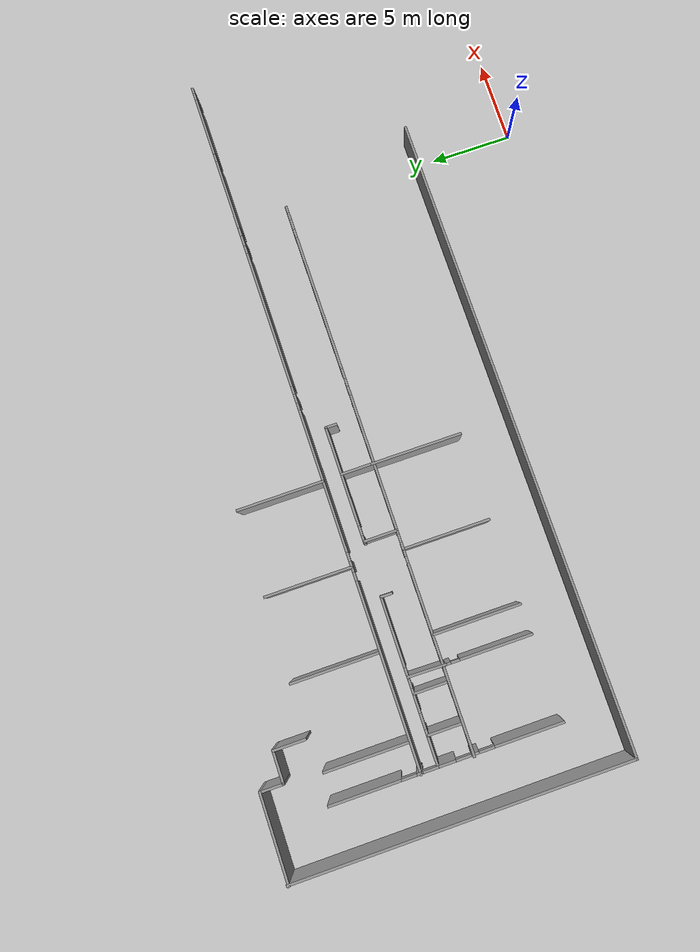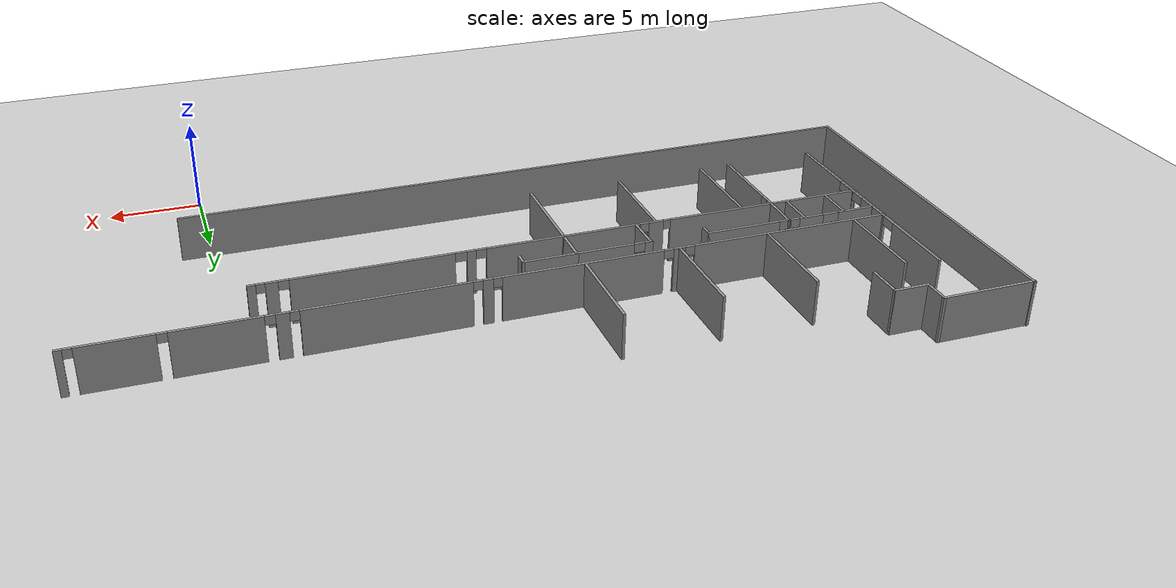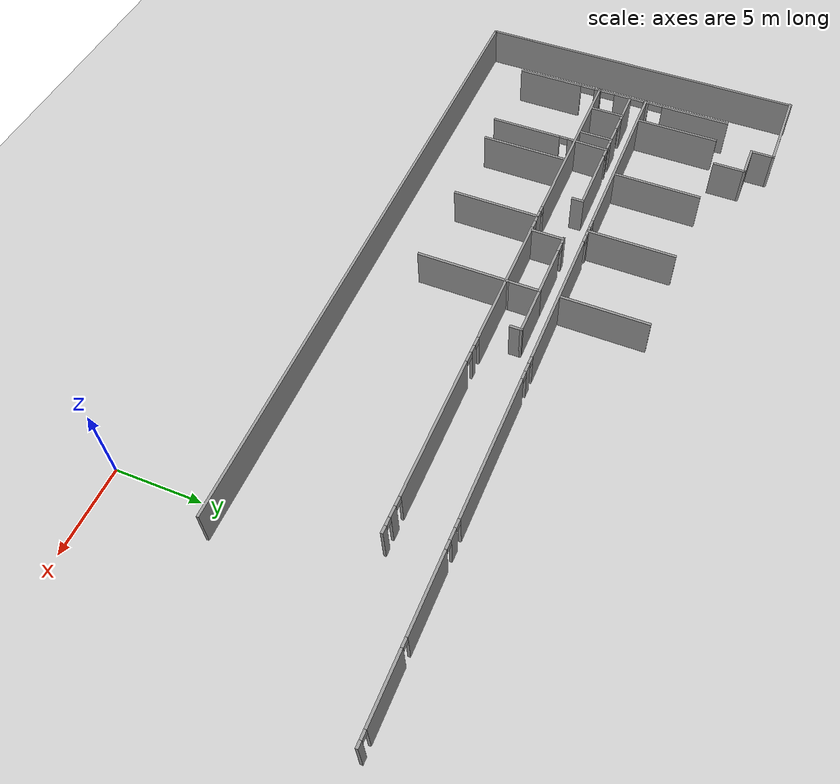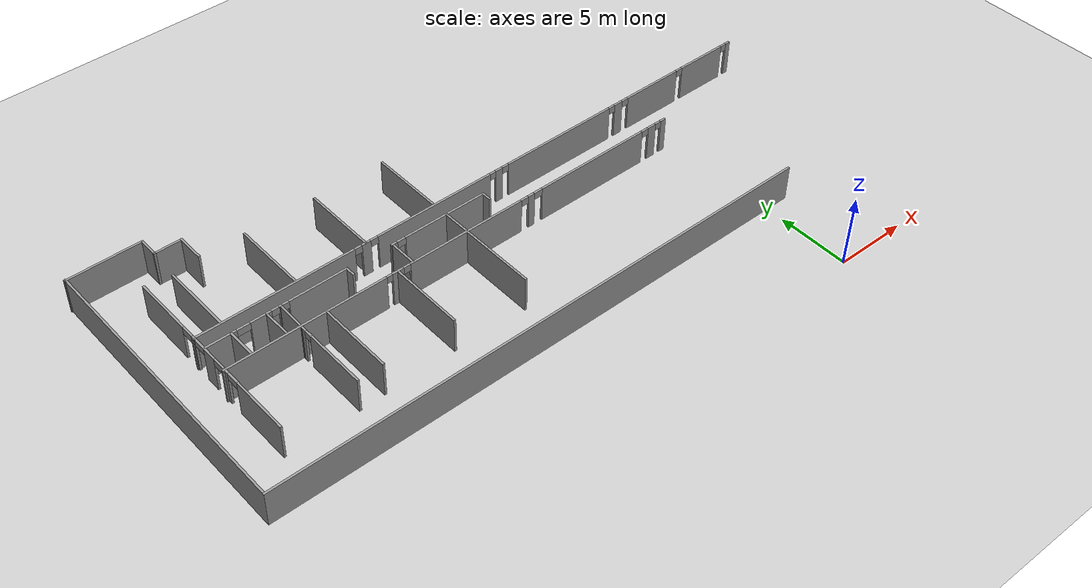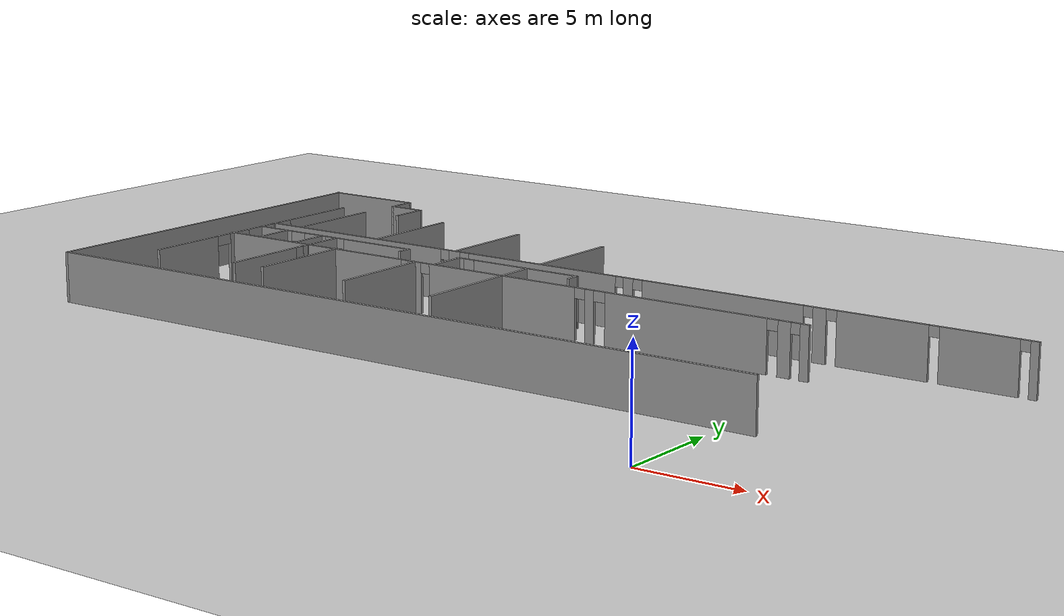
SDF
<sdf version="1.6">
 <world name="default">
  <model name="ground_plane">
   <static>1</static>
   <link name="link">
    <collision name="collision">
     <geometry><plane><normal>0 0 1</normal><size>100 100</size></plane></geometry>
     <surface><friction><ode><mu>100</mu><mu2>50</mu2></ode></friction></surface>
    </collision>
    <visual name="visual">
     <cast_shadows>0</cast_shadows>
     <geometry><plane><normal>0 0 1</normal><size>100 100</size></plane></geometry>
     <material>
      <script><uri>file://media/materials/scripts/gazebo.material</uri><name>Gazebo/Grey</name></script>
     </material>
    </visual>
   </link>
  </model>
  <model name="se1floor1">
   <pose>-5.19256 -0.852459 0 0 -0 0</pose>
   <link name="Wall_0">
    <collision name="Wall_0_Collision">
     <geometry><box><size>20.25 0.15 2.5</size></box></geometry>
     <pose>0 0 1.25 0 -0 0</pose>
    </collision>
    <visual name="Wall_0_Visual">
     <pose>0 0 1.25 0 -0 0</pose>
     <geometry><box><size>20.25 0.15 2.5</size></box></geometry>
     <material>
      <script><uri>file://media/materials/scripts/gazebo.material</uri><name>Gazebo/Grey</name></script>
      <ambient>1 1 1 1</ambient>
     </material>
     <meta><layer>0</layer></meta>
    </visual>
    <pose>-32.1 17.225 0 0 0 -1.5708</pose>
   </link>
   <link name="Wall_1">
    <collision name="Wall_1_Collision">
     <geometry><box><size>39 0.15 2.5</size></box></geometry>
     <pose>0 0 1.25 0 -0 0</pose>
    </collision>
    <visual name="Wall_1_Visual">
     <pose>0 0 1.25 0 -0 0</pose>
     <geometry><box><size>39 0.15 2.5</size></box></geometry>
     <material>
      <script><uri>file://media/materials/scripts/gazebo.material</uri><name>Gazebo/Grey</name></script>
      <ambient>1 1 1 1</ambient>
     </material>
     <meta><layer>0</layer></meta>
    </visual>
    <pose>-12.675 7.175 0 0 -0 0</pose>
   </link>
   <link name="Wall_13">
    <collision name="Wall_13_Collision">
     <geometry><box><size>2 0.15 2.5</size></box></geometry>
     <pose>0 0 1.25 0 -0 0</pose>
    </collision>
    <visual name="Wall_13_Visual">
     <pose>0 0 1.25 0 -0 0</pose>
     <geometry><box><size>2 0.15 2.5</size></box></geometry>
     <material>
      <script><uri>file://media/materials/scripts/gazebo.material</uri><name>Gazebo/Grey</name></script>
      <ambient>1 1 1 1</ambient>
     </material>
     <meta><layer>0</layer></meta>
    </visual>
    <pose>-25.2 24.95 0 0 -0 1.5708</pose>
   </link>
   <link name="Wall_15">
    <collision name="Wall_15_Collision">
     <geometry><box><size>2 0.15 2.5</size></box></geometry>
     <pose>0 0 1.25 0 -0 0</pose>
    </collision>
    <visual name="Wall_15_Visual">
     <pose>0 0 1.25 0 -0 0</pose>
     <geometry><box><size>2 0.15 2.5</size></box></geometry>
     <material>
      <script><uri>file://media/materials/scripts/gazebo.material</uri><name>Gazebo/Grey</name></script>
      <ambient>1 1 1 1</ambient>
     </material>
     <meta><layer>0</layer></meta>
    </visual>
    <pose>-26.125 25.875 0 0 -0 3.14159</pose>
   </link>
   <link name="Wall_16">
    <collision name="Wall_16_Collision">
     <geometry><box><size>1.5 0.15 2.5</size></box></geometry>
     <pose>0 0 1.25 0 -0 0</pose>
    </collision>
    <visual name="Wall_16_Visual">
     <pose>0 0 1.25 0 -0 0</pose>
     <geometry><box><size>1.5 0.15 2.5</size></box></geometry>
     <material>
      <script><uri>file://media/materials/scripts/gazebo.material</uri><name>Gazebo/Grey</name></script>
      <ambient>1 1 1 1</ambient>
     </material>
     <meta><layer>0</layer></meta>
    </visual>
    <pose>-27.05 26.55 0 0 -0 1.5708</pose>
   </link>
   <link name="Wall_17">
    <collision name="Wall_17_Collision">
     <geometry><box><size>5.25 0.15 2.5</size></box></geometry>
     <pose>0 0 1.25 0 -0 0</pose>
    </collision>
    <visual name="Wall_17_Visual">
     <pose>0 0 1.25 0 -0 0</pose>
     <geometry><box><size>5.25 0.15 2.5</size></box></geometry>
     <material>
      <script><uri>file://media/materials/scripts/gazebo.material</uri><name>Gazebo/Grey</name></script>
      <ambient>1 1 1 1</ambient>
     </material>
     <meta><layer>0</layer></meta>
    </visual>
    <pose>-29.6 27.225 0 0 -0 3.14159</pose>
   </link>
   <link name="Wall_19">
    <pose>-28.9578 17.0953 0 0 0 -1.5708</pose>
    <visual name="Wall_19_Visual_0">
     <pose>-4.75272 0 1.25 0 -0 0</pose>
     <geometry><box><size>4.24456 0.15 2.5</size></box></geometry>
     <material>
      <script><uri>file://media/materials/scripts/gazebo.material</uri><name>Gazebo/Grey</name></script>
      <ambient>1 1 1 1</ambient>
     </material>
     <meta><layer>0</layer></meta>
    </visual>
    <collision name="Wall_19_Collision_0">
     <geometry><box><size>4.24456 0.15 2.5</size></box></geometry>
     <pose>-4.75272 0 1.25 0 -0 0</pose>
    </collision>
    <visual name="Wall_19_Visual_1">
     <pose>-1.55236 0 1.25 0 -0 0</pose>
     <geometry><box><size>0.356145 0.15 2.5</size></box></geometry>
     <material>
      <script><uri>file://media/materials/scripts/gazebo.material</uri><name>Gazebo/Grey</name></script>
      <ambient>1 1 1 1</ambient>
     </material>
     <meta><layer>0</layer></meta>
    </visual>
    <collision name="Wall_19_Collision_1">
     <geometry><box><size>0.356145 0.15 2.5</size></box></geometry>
     <pose>-1.55236 0 1.25 0 -0 0</pose>
    </collision>
    <visual name="Wall_19_Visual_2">
     <pose>0.02945 0 1.25 0 -0 0</pose>
     <geometry><box><size>1.00748 0.15 2.5</size></box></geometry>
     <material>
      <script><uri>file://media/materials/scripts/gazebo.material</uri><name>Gazebo/Grey</name></script>
      <ambient>1 1 1 1</ambient>
     </material>
     <meta><layer>0</layer></meta>
    </visual>
    <collision name="Wall_19_Collision_2">
     <geometry><box><size>1.00748 0.15 2.5</size></box></geometry>
     <pose>0.02945 0 1.25 0 -0 0</pose>
    </collision>
    <visual name="Wall_19_Visual_3">
     <pose>1.65779 0 1.25 0 -0 0</pose>
     <geometry><box><size>0.449194 0.15 2.5</size></box></geometry>
     <material>
      <script><uri>file://media/materials/scripts/gazebo.material</uri><name>Gazebo/Grey</name></script>
      <ambient>1 1 1 1</ambient>
     </material>
     <meta><layer>0</layer></meta>
    </visual>
    <collision name="Wall_19_Collision_3">
     <geometry><box><size>0.449194 0.15 2.5</size></box></geometry>
     <pose>1.65779 0 1.25 0 -0 0</pose>
    </collision>
    <visual name="Wall_19_Visual_4">
     <pose>4.82869 0 1.25 0 -0 0</pose>
     <geometry><box><size>4.09262 0.15 2.5</size></box></geometry>
     <material>
      <script><uri>file://media/materials/scripts/gazebo.material</uri><name>Gazebo/Grey</name></script>
      <ambient>1 1 1 1</ambient>
     </material>
     <meta><layer>0</layer></meta>
    </visual>
    <collision name="Wall_19_Collision_4">
     <geometry><box><size>4.09262 0.15 2.5</size></box></geometry>
     <pose>4.82869 0 1.25 0 -0 0</pose>
    </collision>
    <visual name="Wall_19_Visual_5">
     <pose>-2.18044 0 2.25 0 -0 0</pose>
     <geometry><box><size>0.9 0.15 0.5</size></box></geometry>
     <material>
      <script><uri>file://media/materials/scripts/gazebo.material</uri><name>Gazebo/Grey</name></script>
      <ambient>1 1 1 1</ambient>
     </material>
     <meta><layer>0</layer></meta>
    </visual>
    <collision name="Wall_19_Collision_5">
     <geometry><box><size>0.9 0.15 0.5</size></box></geometry>
     <pose>-2.18044 0 2.25 0 -0 0</pose>
    </collision>
    <visual name="Wall_19_Visual_6">
     <pose>-0.92429 0 2.25 0 -0 0</pose>
     <geometry><box><size>0.9 0.15 0.5</size></box></geometry>
     <material>
      <script><uri>file://media/materials/scripts/gazebo.material</uri><name>Gazebo/Grey</name></script>
      <ambient>1 1 1 1</ambient>
     </material>
     <meta><layer>0</layer></meta>
    </visual>
    <collision name="Wall_19_Collision_6">
     <geometry><box><size>0.9 0.15 0.5</size></box></geometry>
     <pose>-0.92429 0 2.25 0 -0 0</pose>
    </collision>
    <visual name="Wall_19_Visual_7">
     <pose>0.983191 0 2.25 0 -0 0</pose>
     <geometry><box><size>0.9 0.15 0.5</size></box></geometry>
     <material>
      <script><uri>file://media/materials/scripts/gazebo.material</uri><name>Gazebo/Grey</name></script>
      <ambient>1 1 1 1</ambient>
     </material>
     <meta><layer>0</layer></meta>
    </visual>
    <collision name="Wall_19_Collision_7">
     <geometry><box><size>0.9 0.15 0.5</size></box></geometry>
     <pose>0.983191 0 2.25 0 -0 0</pose>
    </collision>
    <visual name="Wall_19_Visual_8">
     <pose>2.33238 0 2.25 0 -0 0</pose>
     <geometry><box><size>0.9 0.15 0.5</size></box></geometry>
     <material>
      <script><uri>file://media/materials/scripts/gazebo.material</uri><name>Gazebo/Grey</name></script>
      <ambient>1 1 1 1</ambient>
     </material>
     <meta><layer>0</layer></meta>
    </visual>
    <collision name="Wall_19_Collision_8">
     <geometry><box><size>0.9 0.15 0.5</size></box></geometry>
     <pose>2.33238 0 2.25 0 -0 0</pose>
    </collision>
   </link>
   <link name="Wall_29">
    <pose>-12.3828 15.5453 0 0 -0 3.14159</pose>
    <visual name="Wall_29_Visual_0">
     <pose>-16.5318 0 1.25 0 -0 0</pose>
     <geometry><box><size>0.436443 0.15 2.5</size></box></geometry>
     <material>
      <script><uri>file://media/materials/scripts/gazebo.material</uri><name>Gazebo/Grey</name></script>
      <ambient>1 1 1 1</ambient>
     </material>
     <meta><layer>0</layer></meta>
    </visual>
    <collision name="Wall_29_Collision_0">
     <geometry><box><size>0.436443 0.15 2.5</size></box></geometry>
     <pose>-16.5318 0 1.25 0 -0 0</pose>
    </collision>
    <visual name="Wall_29_Visual_1">
     <pose>-15.5417 0 1.25 0 -0 0</pose>
     <geometry><box><size>0.628631 0.15 2.5</size></box></geometry>
     <material>
      <script><uri>file://media/materials/scripts/gazebo.material</uri><name>Gazebo/Grey</name></script>
      <ambient>1 1 1 1</ambient>
     </material>
     <meta><layer>0</layer></meta>
    </visual>
    <collision name="Wall_29_Collision_1">
     <geometry><box><size>0.628631 0.15 2.5</size></box></geometry>
     <pose>-15.5417 0 1.25 0 -0 0</pose>
    </collision>
    <visual name="Wall_29_Visual_2">
     <pose>-10.4781 0 1.25 0 -0 0</pose>
     <geometry><box><size>8.42264 0.15 2.5</size></box></geometry>
     <material>
      <script><uri>file://media/materials/scripts/gazebo.material</uri><name>Gazebo/Grey</name></script>
      <ambient>1 1 1 1</ambient>
     </material>
     <meta><layer>0</layer></meta>
    </visual>
    <collision name="Wall_29_Collision_2">
     <geometry><box><size>8.42264 0.15 2.5</size></box></geometry>
     <pose>-10.4781 0 1.25 0 -0 0</pose>
    </collision>
    <visual name="Wall_29_Visual_3">
     <pose>-5.40953 0 1.25 0 -0 0</pose>
     <geometry><box><size>0.477779 0.15 2.5</size></box></geometry>
     <material>
      <script><uri>file://media/materials/scripts/gazebo.material</uri><name>Gazebo/Grey</name></script>
      <ambient>1 1 1 1</ambient>
     </material>
     <meta><layer>0</layer></meta>
    </visual>
    <collision name="Wall_29_Collision_3">
     <geometry><box><size>0.477779 0.15 2.5</size></box></geometry>
     <pose>-5.40953 0 1.25 0 -0 0</pose>
    </collision>
    <visual name="Wall_29_Visual_4">
     <pose>-0.381135 0 1.25 0 -0 0</pose>
     <geometry><box><size>8.46287 0.15 2.5</size></box></geometry>
     <material>
      <script><uri>file://media/materials/scripts/gazebo.material</uri><name>Gazebo/Grey</name></script>
      <ambient>1 1 1 1</ambient>
     </material>
     <meta><layer>0</layer></meta>
    </visual>
    <collision name="Wall_29_Collision_4">
     <geometry><box><size>8.46287 0.15 2.5</size></box></geometry>
     <pose>-0.381135 0 1.25 0 -0 0</pose>
    </collision>
    <visual name="Wall_29_Visual_5">
     <pose>4.75788 0 1.25 0 -0 0</pose>
     <geometry><box><size>0.81971 0.15 2.5</size></box></geometry>
     <material>
      <script><uri>file://media/materials/scripts/gazebo.material</uri><name>Gazebo/Grey</name></script>
      <ambient>1 1 1 1</ambient>
     </material>
     <meta><layer>0</layer></meta>
    </visual>
    <collision name="Wall_29_Collision_5">
     <geometry><box><size>0.81971 0.15 2.5</size></box></geometry>
     <pose>4.75788 0 1.25 0 -0 0</pose>
    </collision>
    <visual name="Wall_29_Visual_6">
     <pose>11.1574 0 1.25 0 -0 0</pose>
     <geometry><box><size>11.1851 0.15 2.5</size></box></geometry>
     <material>
      <script><uri>file://media/materials/scripts/gazebo.material</uri><name>Gazebo/Grey</name></script>
      <ambient>1 1 1 1</ambient>
     </material>
     <meta><layer>0</layer></meta>
    </visual>
    <collision name="Wall_29_Collision_6">
     <geometry><box><size>11.1851 0.15 2.5</size></box></geometry>
     <pose>11.1574 0 1.25 0 -0 0</pose>
    </collision>
    <visual name="Wall_29_Visual_7">
     <pose>-16.0848 0 2.25 0 -0 0</pose>
     <geometry><box><size>0.457501 0.15 0.5</size></box></geometry>
     <material>
      <script><uri>file://media/materials/scripts/gazebo.material</uri><name>Gazebo/Grey</name></script>
      <ambient>1 1 1 1</ambient>
     </material>
     <meta><layer>0</layer></meta>
    </visual>
    <collision name="Wall_29_Collision_7">
     <geometry><box><size>0.457501 0.15 0.5</size></box></geometry>
     <pose>-16.0848 0 2.25 0 -0 0</pose>
    </collision>
    <visual name="Wall_29_Visual_8">
     <pose>-14.9584 0 2.25 0 -0 0</pose>
     <geometry><box><size>0.537956 0.15 0.5</size></box></geometry>
     <material>
      <script><uri>file://media/materials/scripts/gazebo.material</uri><name>Gazebo/Grey</name></script>
      <ambient>1 1 1 1</ambient>
     </material>
     <meta><layer>0</layer></meta>
    </visual>
    <collision name="Wall_29_Collision_8">
     <geometry><box><size>0.537956 0.15 0.5</size></box></geometry>
     <pose>-14.9584 0 2.25 0 -0 0</pose>
    </collision>
    <visual name="Wall_29_Visual_9">
     <pose>-5.95762 0 2.25 0 -0 0</pose>
     <geometry><box><size>0.61841 0.15 0.5</size></box></geometry>
     <material>
      <script><uri>file://media/materials/scripts/gazebo.material</uri><name>Gazebo/Grey</name></script>
      <ambient>1 1 1 1</ambient>
     </material>
     <meta><layer>0</layer></meta>
    </visual>
    <collision name="Wall_29_Collision_9">
     <geometry><box><size>0.61841 0.15 0.5</size></box></geometry>
     <pose>-5.95762 0 2.25 0 -0 0</pose>
    </collision>
    <visual name="Wall_29_Visual_10">
     <pose>-4.8916 0 2.25 0 -0 0</pose>
     <geometry><box><size>0.558069 0.15 0.5</size></box></geometry>
     <material>
      <script><uri>file://media/materials/scripts/gazebo.material</uri><name>Gazebo/Grey</name></script>
      <ambient>1 1 1 1</ambient>
     </material>
     <meta><layer>0</layer></meta>
    </visual>
    <collision name="Wall_29_Collision_10">
     <geometry><box><size>0.558069 0.15 0.5</size></box></geometry>
     <pose>-4.8916 0 2.25 0 -0 0</pose>
    </collision>
    <visual name="Wall_29_Visual_11">
     <pose>4.09916 0 2.25 0 -0 0</pose>
     <geometry><box><size>0.497729 0.15 0.5</size></box></geometry>
     <material>
      <script><uri>file://media/materials/scripts/gazebo.material</uri><name>Gazebo/Grey</name></script>
      <ambient>1 1 1 1</ambient>
     </material>
     <meta><layer>0</layer></meta>
    </visual>
    <collision name="Wall_29_Collision_11">
     <geometry><box><size>0.497729 0.15 0.5</size></box></geometry>
     <pose>4.09916 0 2.25 0 -0 0</pose>
    </collision>
    <visual name="Wall_29_Visual_12">
     <pose>5.36632 0 2.25 0 -0 0</pose>
     <geometry><box><size>0.397161 0.15 0.5</size></box></geometry>
     <material>
      <script><uri>file://media/materials/scripts/gazebo.material</uri><name>Gazebo/Grey</name></script>
      <ambient>1 1 1 1</ambient>
     </material>
     <meta><layer>0</layer></meta>
    </visual>
    <collision name="Wall_29_Collision_12">
     <geometry><box><size>0.397161 0.15 0.5</size></box></geometry>
     <pose>5.36632 0 2.25 0 -0 0</pose>
    </collision>
   </link>
   <link name="Wall_39">
    <collision name="Wall_39_Collision">
     <geometry><box><size>0.75 0.15 2.5</size></box></geometry>
     <pose>0 0 1.25 0 -0 0</pose>
    </collision>
    <visual name="Wall_39_Visual">
     <pose>0 0 1.25 0 -0 0</pose>
     <geometry><box><size>0.75 0.15 2.5</size></box></geometry>
     <material>
      <script><uri>file://media/materials/scripts/gazebo.material</uri><name>Gazebo/Grey</name></script>
      <ambient>1 1 1 1</ambient>
     </material>
     <meta><layer>0</layer></meta>
    </visual>
    <pose>-9.1084 17.204 0 0 -0 1.5708</pose>
   </link>
   <link name="Wall_40">
    <collision name="Wall_40_Collision">
     <geometry><box><size>3 0.15 2.5</size></box></geometry>
     <pose>0 0 1.25 0 -0 0</pose>
    </collision>
    <visual name="Wall_40_Visual">
     <pose>0 0 1.25 0 -0 0</pose>
     <geometry><box><size>3 0.15 2.5</size></box></geometry>
     <material>
      <script><uri>file://media/materials/scripts/gazebo.material</uri><name>Gazebo/Grey</name></script>
      <ambient>1 1 1 1</ambient>
     </material>
     <meta><layer>0</layer></meta>
    </visual>
    <pose>-10.5334 17.504 0 0 -0 3.14159</pose>
   </link>
   <link name="Wall_41">
    <collision name="Wall_41_Collision">
     <geometry><box><size>2 0.15 2.5</size></box></geometry>
     <pose>0 0 1.25 0 -0 0</pose>
    </collision>
    <visual name="Wall_41_Visual">
     <pose>0 0 1.25 0 -0 0</pose>
     <geometry><box><size>2 0.15 2.5</size></box></geometry>
     <material>
      <script><uri>file://media/materials/scripts/gazebo.material</uri><name>Gazebo/Grey</name></script>
      <ambient>1 1 1 1</ambient>
     </material>
     <meta><layer>0</layer></meta>
    </visual>
    <pose>-11.9584 16.579 0 0 0 -1.5708</pose>
   </link>
   <link name="Wall_52">
    <collision name="Wall_52_Collision">
     <geometry><box><size>5.5 0.15 2.5</size></box></geometry>
     <pose>0 0 1.25 0 -0 0</pose>
    </collision>
    <visual name="Wall_52_Visual">
     <pose>0 0 1.25 0 -0 0</pose>
     <geometry><box><size>5.5 0.15 2.5</size></box></geometry>
     <material>
      <script><uri>file://media/materials/scripts/gazebo.material</uri><name>Gazebo/Grey</name></script>
      <ambient>1 1 1 1</ambient>
     </material>
     <meta><layer>0</layer></meta>
    </visual>
    <pose>-11.9584 12.979 0 0 0 -1.5708</pose>
   </link>
   <link name="Wall_54">
    <collision name="Wall_54_Collision">
     <geometry><box><size>5.25 0.15 2.5</size></box></geometry>
     <pose>0 0 1.25 0 -0 0</pose>
    </collision>
    <visual name="Wall_54_Visual">
     <pose>0 0 1.25 0 -0 0</pose>
     <geometry><box><size>5.25 0.15 2.5</size></box></geometry>
     <material>
      <script><uri>file://media/materials/scripts/gazebo.material</uri><name>Gazebo/Grey</name></script>
      <ambient>1 1 1 1</ambient>
     </material>
     <meta><layer>0</layer></meta>
    </visual>
    <pose>-17.1338 12.9629 0 0 0 -1.5708</pose>
   </link>
   <link name="Wall_56">
    <collision name="Wall_56_Collision">
     <geometry><box><size>5.25 0.15 2.5</size></box></geometry>
     <pose>0 0 1.25 0 -0 0</pose>
    </collision>
    <visual name="Wall_56_Visual">
     <pose>0 0 1.25 0 -0 0</pose>
     <geometry><box><size>5.25 0.15 2.5</size></box></geometry>
     <material>
      <script><uri>file://media/materials/scripts/gazebo.material</uri><name>Gazebo/Grey</name></script>
      <ambient>1 1 1 1</ambient>
     </material>
     <meta><layer>0</layer></meta>
    </visual>
    <pose>-22.163 12.9094 0 0 0 -1.5708</pose>
   </link>
   <link name="Wall_58">
    <pose>-23.9286 12.8559 0 0 0 -1.5708</pose>
    <visual name="Wall_58_Visual_0">
     <pose>-2.4292 0 1.25 0 -0 0</pose>
     <geometry><box><size>0.391598 0.15 2.5</size></box></geometry>
     <material>
      <script><uri>file://media/materials/scripts/gazebo.material</uri><name>Gazebo/Grey</name></script>
      <ambient>1 1 1 1</ambient>
     </material>
     <meta><layer>0</layer></meta>
    </visual>
    <collision name="Wall_58_Collision_0">
     <geometry><box><size>0.391598 0.15 2.5</size></box></geometry>
     <pose>-2.4292 0 1.25 0 -0 0</pose>
    </collision>
    <visual name="Wall_58_Visual_1">
     <pose>0.45472 0 1.25 0 -0 0</pose>
     <geometry><box><size>4.34056 0.15 2.5</size></box></geometry>
     <material>
      <script><uri>file://media/materials/scripts/gazebo.material</uri><name>Gazebo/Grey</name></script>
      <ambient>1 1 1 1</ambient>
     </material>
     <meta><layer>0</layer></meta>
    </visual>
    <collision name="Wall_58_Collision_1">
     <geometry><box><size>4.34056 0.15 2.5</size></box></geometry>
     <pose>0.45472 0 1.25 0 -0 0</pose>
    </collision>
    <visual name="Wall_58_Visual_2">
     <pose>-1.97448 0 2.25 0 -0 0</pose>
     <geometry><box><size>0.517842 0.15 0.5</size></box></geometry>
     <material>
      <script><uri>file://media/materials/scripts/gazebo.material</uri><name>Gazebo/Grey</name></script>
      <ambient>1 1 1 1</ambient>
     </material>
     <meta><layer>0</layer></meta>
    </visual>
    <collision name="Wall_58_Collision_2">
     <geometry><box><size>0.517842 0.15 0.5</size></box></geometry>
     <pose>-1.97448 0 2.25 0 -0 0</pose>
    </collision>
   </link>
   <link name="Wall_60">
    <pose>-24.0508 17.5995 0 0 -0 0</pose>
    <visual name="Wall_60_Visual_0">
     <pose>-3.833 0 1.25 0 -0 0</pose>
     <geometry><box><size>2.084 0.15 2.5</size></box></geometry>
     <material>
      <script><uri>file://media/materials/scripts/gazebo.material</uri><name>Gazebo/Grey</name></script>
      <ambient>1 1 1 1</ambient>
     </material>
     <meta><layer>0</layer></meta>
    </visual>
    <collision name="Wall_60_Collision_0">
     <geometry><box><size>2.084 0.15 2.5</size></box></geometry>
     <pose>-3.833 0 1.25 0 -0 0</pose>
    </collision>
    <visual name="Wall_60_Visual_1">
     <pose>-1.18501 0 1.25 0 -0 0</pose>
     <geometry><box><size>1.41198 0.15 2.5</size></box></geometry>
     <material>
      <script><uri>file://media/materials/scripts/gazebo.material</uri><name>Gazebo/Grey</name></script>
      <ambient>1 1 1 1</ambient>
     </material>
     <meta><layer>0</layer></meta>
    </visual>
    <collision name="Wall_60_Collision_1">
     <geometry><box><size>1.41198 0.15 2.5</size></box></geometry>
     <pose>-1.18501 0 1.25 0 -0 0</pose>
    </collision>
    <visual name="Wall_60_Visual_2">
     <pose>0.144387 0 1.25 0 -0 0</pose>
     <geometry><box><size>0.191206 0.15 2.5</size></box></geometry>
     <material>
      <script><uri>file://media/materials/scripts/gazebo.material</uri><name>Gazebo/Grey</name></script>
      <ambient>1 1 1 1</ambient>
     </material>
     <meta><layer>0</layer></meta>
    </visual>
    <collision name="Wall_60_Collision_2">
     <geometry><box><size>0.191206 0.15 2.5</size></box></geometry>
     <pose>0.144387 0 1.25 0 -0 0</pose>
    </collision>
    <visual name="Wall_60_Visual_3">
     <pose>2.7963 0 1.25 0 -0 0</pose>
     <geometry><box><size>4.1574 0.15 2.5</size></box></geometry>
     <material>
      <script><uri>file://media/materials/scripts/gazebo.material</uri><name>Gazebo/Grey</name></script>
      <ambient>1 1 1 1</ambient>
     </material>
     <meta><layer>0</layer></meta>
    </visual>
    <collision name="Wall_60_Collision_3">
     <geometry><box><size>4.1574 0.15 2.5</size></box></geometry>
     <pose>2.7963 0 1.25 0 -0 0</pose>
    </collision>
    <visual name="Wall_60_Visual_4">
     <pose>-2.341 0 2.25 0 -0 0</pose>
     <geometry><box><size>0.9 0.15 0.5</size></box></geometry>
     <material>
      <script><uri>file://media/materials/scripts/gazebo.material</uri><name>Gazebo/Grey</name></script>
      <ambient>1 1 1 1</ambient>
     </material>
     <meta><layer>0</layer></meta>
    </visual>
    <collision name="Wall_60_Collision_4">
     <geometry><box><size>0.9 0.15 0.5</size></box></geometry>
     <pose>-2.341 0 2.25 0 -0 0</pose>
    </collision>
    <visual name="Wall_60_Visual_5">
     <pose>-0.21512 0 2.25 0 -0 0</pose>
     <geometry><box><size>0.527809 0.15 0.5</size></box></geometry>
     <material>
      <script><uri>file://media/materials/scripts/gazebo.material</uri><name>Gazebo/Grey</name></script>
      <ambient>1 1 1 1</ambient>
     </material>
     <meta><layer>0</layer></meta>
    </visual>
    <collision name="Wall_60_Collision_5">
     <geometry><box><size>0.527809 0.15 0.5</size></box></geometry>
     <pose>-0.21512 0 2.25 0 -0 0</pose>
    </collision>
    <visual name="Wall_60_Visual_6">
     <pose>0.478798 0 2.25 0 -0 0</pose>
     <geometry><box><size>0.477615 0.15 0.5</size></box></geometry>
     <material>
      <script><uri>file://media/materials/scripts/gazebo.material</uri><name>Gazebo/Grey</name></script>
      <ambient>1 1 1 1</ambient>
     </material>
     <meta><layer>0</layer></meta>
    </visual>
    <collision name="Wall_60_Collision_6">
     <geometry><box><size>0.477615 0.15 0.5</size></box></geometry>
     <pose>0.478798 0 2.25 0 -0 0</pose>
    </collision>
   </link>
   <link name="Wall_61">
    <collision name="Wall_61_Collision">
     <geometry><box><size>0.75 0.15 2.5</size></box></geometry>
     <pose>0 0 1.25 0 -0 0</pose>
    </collision>
    <visual name="Wall_61_Visual">
     <pose>0 0 1.25 0 -0 0</pose>
     <geometry><box><size>0.75 0.15 2.5</size></box></geometry>
     <material>
      <script><uri>file://media/materials/scripts/gazebo.material</uri><name>Gazebo/Grey</name></script>
      <ambient>1 1 1 1</ambient>
     </material>
     <meta><layer>0</layer></meta>
    </visual>
    <pose>-19.2508 17.2995 0 0 0 -1.5708</pose>
   </link>
   <link name="Wall_63">
    <collision name="Wall_63_Collision">
     <geometry><box><size>2 0.15 2.5</size></box></geometry>
     <pose>0 0 1.25 0 -0 0</pose>
    </collision>
    <visual name="Wall_63_Visual">
     <pose>0 0 1.25 0 -0 0</pose>
     <geometry><box><size>2 0.15 2.5</size></box></geometry>
     <material>
      <script><uri>file://media/materials/scripts/gazebo.material</uri><name>Gazebo/Grey</name></script>
      <ambient>1 1 1 1</ambient>
     </material>
     <meta><layer>0</layer></meta>
    </visual>
    <pose>-27.1922 16.621 0 0 0 -1.5708</pose>
   </link>
   <link name="Wall_65">
    <collision name="Wall_65_Collision">
     <geometry><box><size>2 0.15 2.5</size></box></geometry>
     <pose>0 0 1.25 0 -0 0</pose>
    </collision>
    <visual name="Wall_65_Visual">
     <pose>0 0 1.25 0 -0 0</pose>
     <geometry><box><size>2 0.15 2.5</size></box></geometry>
     <material>
      <script><uri>file://media/materials/scripts/gazebo.material</uri><name>Gazebo/Grey</name></script>
      <ambient>1 1 1 1</ambient>
     </material>
     <meta><layer>0</layer></meta>
    </visual>
    <pose>-24.8381 16.621 0 0 0 -1.5708</pose>
   </link>
   <link name="Wall_67">
    <collision name="Wall_67_Collision">
     <geometry><box><size>2.34425 0.15 2.5</size></box></geometry>
     <pose>0 0 1.25 0 -0 0</pose>
    </collision>
    <visual name="Wall_67_Visual">
     <pose>0 0 1.25 0 -0 0</pose>
     <geometry><box><size>2.34425 0.15 2.5</size></box></geometry>
     <material>
      <script><uri>file://media/materials/scripts/gazebo.material</uri><name>Gazebo/Grey</name></script>
      <ambient>1 1 1 1</ambient>
     </material>
     <meta><layer>0</layer></meta>
    </visual>
    <pose>-23.9018 16.5027 0 0 0 -1.59518</pose>
   </link>
   <link name="Wall_69">
    <collision name="Wall_69_Collision">
     <geometry><box><size>2 0.15 2.5</size></box></geometry>
     <pose>0 0 1.25 0 -0 0</pose>
    </collision>
    <visual name="Wall_69_Visual">
     <pose>0 0 1.25 0 -0 0</pose>
     <geometry><box><size>2 0.15 2.5</size></box></geometry>
     <material>
      <script><uri>file://media/materials/scripts/gazebo.material</uri><name>Gazebo/Grey</name></script>
      <ambient>1 1 1 1</ambient>
     </material>
     <meta><layer>0</layer></meta>
    </visual>
    <pose>-16.0102 16.5449 0 0 -0 1.5708</pose>
   </link>
   <link name="Wall_71">
    <pose>-14.0084 17.504 0 0 -0 3.14159</pose>
    <visual name="Wall_71_Visual_0">
     <pose>-0.528402 0 1.25 0 -0 0</pose>
     <geometry><box><size>3.1932 0.15 2.5</size></box></geometry>
     <material>
      <script><uri>file://media/materials/scripts/gazebo.material</uri><name>Gazebo/Grey</name></script>
      <ambient>1 1 1 1</ambient>
     </material>
     <meta><layer>0</layer></meta>
    </visual>
    <collision name="Wall_71_Collision_0">
     <geometry><box><size>3.1932 0.15 2.5</size></box></geometry>
     <pose>-0.528402 0 1.25 0 -0 0</pose>
    </collision>
    <visual name="Wall_71_Visual_1">
     <pose>1.89575 0 1.25 0 -0 0</pose>
     <geometry><box><size>0.458508 0.15 2.5</size></box></geometry>
     <material>
      <script><uri>file://media/materials/scripts/gazebo.material</uri><name>Gazebo/Grey</name></script>
      <ambient>1 1 1 1</ambient>
     </material>
     <meta><layer>0</layer></meta>
    </visual>
    <collision name="Wall_71_Collision_1">
     <geometry><box><size>0.458508 0.15 2.5</size></box></geometry>
     <pose>1.89575 0 1.25 0 -0 0</pose>
    </collision>
    <visual name="Wall_71_Visual_2">
     <pose>1.36734 0 2.25 0 -0 0</pose>
     <geometry><box><size>0.598296 0.15 0.5</size></box></geometry>
     <material>
      <script><uri>file://media/materials/scripts/gazebo.material</uri><name>Gazebo/Grey</name></script>
      <ambient>1 1 1 1</ambient>
     </material>
     <meta><layer>0</layer></meta>
    </visual>
    <collision name="Wall_71_Collision_2">
     <geometry><box><size>0.598296 0.15 0.5</size></box></geometry>
     <pose>1.36734 0 2.25 0 -0 0</pose>
    </collision>
   </link>
   <link name="Wall_76">
    <collision name="Wall_76_Collision">
     <geometry><box><size>5 0.15 2.5</size></box></geometry>
     <pose>0 0 1.25 0 -0 0</pose>
    </collision>
    <visual name="Wall_76_Visual">
     <pose>0 0 1.25 0 -0 0</pose>
     <geometry><box><size>5 0.15 2.5</size></box></geometry>
     <material>
      <script><uri>file://media/materials/scripts/gazebo.material</uri><name>Gazebo/Grey</name></script>
      <ambient>1 1 1 1</ambient>
     </material>
     <meta><layer>0</layer></meta>
    </visual>
    <pose>-27.1922 21.1668 0 0 0 -1.5708</pose>
   </link>
   <link name="Wall_78">
    <pose>-7.83633 18.6161 0 0 -0 0</pose>
    <visual name="Wall_78_Visual_0">
     <pose>-15.6857 0 1.25 0 -0 0</pose>
     <geometry><box><size>11.1285 0.15 2.5</size></box></geometry>
     <material>
      <script><uri>file://media/materials/scripts/gazebo.material</uri><name>Gazebo/Grey</name></script>
      <ambient>1 1 1 1</ambient>
     </material>
     <meta><layer>0</layer></meta>
    </visual>
    <collision name="Wall_78_Collision_0">
     <geometry><box><size>11.1285 0.15 2.5</size></box></geometry>
     <pose>-15.6857 0 1.25 0 -0 0</pose>
    </collision>
    <visual name="Wall_78_Visual_1">
     <pose>-9.28426 0 1.25 0 -0 0</pose>
     <geometry><box><size>0.638689 0.15 2.5</size></box></geometry>
     <material>
      <script><uri>file://media/materials/scripts/gazebo.material</uri><name>Gazebo/Grey</name></script>
      <ambient>1 1 1 1</ambient>
     </material>
     <meta><layer>0</layer></meta>
    </visual>
    <collision name="Wall_78_Collision_1">
     <geometry><box><size>0.638689 0.15 2.5</size></box></geometry>
     <pose>-9.28426 0 1.25 0 -0 0</pose>
    </collision>
    <visual name="Wall_78_Visual_2">
     <pose>-4.11508 0 1.25 0 -0 0</pose>
     <geometry><box><size>8.62378 0.15 2.5</size></box></geometry>
     <material>
      <script><uri>file://media/materials/scripts/gazebo.material</uri><name>Gazebo/Grey</name></script>
      <ambient>1 1 1 1</ambient>
     </material>
     <meta><layer>0</layer></meta>
    </visual>
    <collision name="Wall_78_Collision_2">
     <geometry><box><size>8.62378 0.15 2.5</size></box></geometry>
     <pose>-4.11508 0 1.25 0 -0 0</pose>
    </collision>
    <visual name="Wall_78_Visual_3">
     <pose>0.903259 0 1.25 0 -0 0</pose>
     <geometry><box><size>0.538121 0.15 2.5</size></box></geometry>
     <material>
      <script><uri>file://media/materials/scripts/gazebo.material</uri><name>Gazebo/Grey</name></script>
      <ambient>1 1 1 1</ambient>
     </material>
     <meta><layer>0</layer></meta>
    </visual>
    <collision name="Wall_78_Collision_3">
     <geometry><box><size>0.538121 0.15 2.5</size></box></geometry>
     <pose>0.903259 0 1.25 0 -0 0</pose>
    </collision>
    <visual name="Wall_78_Visual_4">
     <pose>5.91657 0 1.25 0 -0 0</pose>
     <geometry><box><size>8.49304 0.15 2.5</size></box></geometry>
     <material>
      <script><uri>file://media/materials/scripts/gazebo.material</uri><name>Gazebo/Grey</name></script>
      <ambient>1 1 1 1</ambient>
     </material>
     <meta><layer>0</layer></meta>
    </visual>
    <collision name="Wall_78_Collision_4">
     <geometry><box><size>8.49304 0.15 2.5</size></box></geometry>
     <pose>5.91657 0 1.25 0 -0 0</pose>
    </collision>
    <visual name="Wall_78_Visual_5">
     <pose>10.9701 0 1.25 0 -0 0</pose>
     <geometry><box><size>0.658802 0.15 2.5</size></box></geometry>
     <material>
      <script><uri>file://media/materials/scripts/gazebo.material</uri><name>Gazebo/Grey</name></script>
      <ambient>1 1 1 1</ambient>
     </material>
     <meta><layer>0</layer></meta>
    </visual>
    <collision name="Wall_78_Collision_5">
     <geometry><box><size>0.658802 0.15 2.5</size></box></geometry>
     <pose>10.9701 0 1.25 0 -0 0</pose>
    </collision>
    <visual name="Wall_78_Visual_6">
     <pose>14.0274 0 1.25 0 -0 0</pose>
     <geometry><box><size>4.42004 0.15 2.5</size></box></geometry>
     <material>
      <script><uri>file://media/materials/scripts/gazebo.material</uri><name>Gazebo/Grey</name></script>
      <ambient>1 1 1 1</ambient>
     </material>
     <meta><layer>0</layer></meta>
    </visual>
    <collision name="Wall_78_Collision_6">
     <geometry><box><size>4.42004 0.15 2.5</size></box></geometry>
     <pose>14.0274 0 1.25 0 -0 0</pose>
    </collision>
    <visual name="Wall_78_Visual_7">
     <pose>18.573 0 1.25 0 -0 0</pose>
     <geometry><box><size>3.67584 0.15 2.5</size></box></geometry>
     <material>
      <script><uri>file://media/materials/scripts/gazebo.material</uri><name>Gazebo/Grey</name></script>
      <ambient>1 1 1 1</ambient>
     </material>
     <meta><layer>0</layer></meta>
    </visual>
    <collision name="Wall_78_Collision_7">
     <geometry><box><size>3.67584 0.15 2.5</size></box></geometry>
     <pose>18.573 0 1.25 0 -0 0</pose>
    </collision>
    <visual name="Wall_78_Visual_8">
     <pose>21.0592 0 1.25 0 -0 0</pose>
     <geometry><box><size>0.381548 0.15 2.5</size></box></geometry>
     <material>
      <script><uri>file://media/materials/scripts/gazebo.material</uri><name>Gazebo/Grey</name></script>
      <ambient>1 1 1 1</ambient>
     </material>
     <meta><layer>0</layer></meta>
    </visual>
    <collision name="Wall_78_Collision_8">
     <geometry><box><size>0.381548 0.15 2.5</size></box></geometry>
     <pose>21.0592 0 1.25 0 -0 0</pose>
    </collision>
    <visual name="Wall_78_Visual_9">
     <pose>-9.86253 0 2.25 0 -0 0</pose>
     <geometry><box><size>0.517842 0.15 0.5</size></box></geometry>
     <material>
      <script><uri>file://media/materials/scripts/gazebo.material</uri><name>Gazebo/Grey</name></script>
      <ambient>1 1 1 1</ambient>
     </material>
     <meta><layer>0</layer></meta>
    </visual>
    <collision name="Wall_78_Collision_9">
     <geometry><box><size>0.517842 0.15 0.5</size></box></geometry>
     <pose>-9.86253 0 2.25 0 -0 0</pose>
    </collision>
    <visual name="Wall_78_Visual_10">
     <pose>-8.69594 0 2.25 0 -0 0</pose>
     <geometry><box><size>0.537956 0.15 0.5</size></box></geometry>
     <material>
      <script><uri>file://media/materials/scripts/gazebo.material</uri><name>Gazebo/Grey</name></script>
      <ambient>1 1 1 1</ambient>
     </material>
     <meta><layer>0</layer></meta>
    </visual>
    <collision name="Wall_78_Collision_10">
     <geometry><box><size>0.537956 0.15 0.5</size></box></geometry>
     <pose>-8.69594 0 2.25 0 -0 0</pose>
    </collision>
    <visual name="Wall_78_Visual_11">
     <pose>0.415504 0 2.25 0 -0 0</pose>
     <geometry><box><size>0.437388 0.15 0.5</size></box></geometry>
     <material>
      <script><uri>file://media/materials/scripts/gazebo.material</uri><name>Gazebo/Grey</name></script>
      <ambient>1 1 1 1</ambient>
     </material>
     <meta><layer>0</layer></meta>
    </visual>
    <collision name="Wall_78_Collision_11">
     <geometry><box><size>0.437388 0.15 0.5</size></box></geometry>
     <pose>0.415504 0 2.25 0 -0 0</pose>
    </collision>
    <visual name="Wall_78_Visual_12">
     <pose>1.42118 0 2.25 0 -0 0</pose>
     <geometry><box><size>0.497729 0.15 0.5</size></box></geometry>
     <material>
      <script><uri>file://media/materials/scripts/gazebo.material</uri><name>Gazebo/Grey</name></script>
      <ambient>1 1 1 1</ambient>
     </material>
     <meta><layer>0</layer></meta>
    </visual>
    <collision name="Wall_78_Collision_12">
     <geometry><box><size>0.497729 0.15 0.5</size></box></geometry>
     <pose>1.42118 0 2.25 0 -0 0</pose>
    </collision>
    <visual name="Wall_78_Visual_13">
     <pose>10.4019 0 2.25 0 -0 0</pose>
     <geometry><box><size>0.477615 0.15 0.5</size></box></geometry>
     <material>
      <script><uri>file://media/materials/scripts/gazebo.material</uri><name>Gazebo/Grey</name></script>
      <ambient>1 1 1 1</ambient>
     </material>
     <meta><layer>0</layer></meta>
    </visual>
    <collision name="Wall_78_Collision_13">
     <geometry><box><size>0.477615 0.15 0.5</size></box></geometry>
     <pose>10.4019 0 2.25 0 -0 0</pose>
    </collision>
    <visual name="Wall_78_Visual_14">
     <pose>11.5584 0 2.25 0 -0 0</pose>
     <geometry><box><size>0.517842 0.15 0.5</size></box></geometry>
     <material>
      <script><uri>file://media/materials/scripts/gazebo.material</uri><name>Gazebo/Grey</name></script>
      <ambient>1 1 1 1</ambient>
     </material>
     <meta><layer>0</layer></meta>
    </visual>
    <collision name="Wall_78_Collision_14">
     <geometry><box><size>0.517842 0.15 0.5</size></box></geometry>
     <pose>11.5584 0 2.25 0 -0 0</pose>
    </collision>
    <visual name="Wall_78_Visual_15">
     <pose>16.4862 0 2.25 0 -0 0</pose>
     <geometry><box><size>0.497729 0.15 0.5</size></box></geometry>
     <material>
      <script><uri>file://media/materials/scripts/gazebo.material</uri><name>Gazebo/Grey</name></script>
      <ambient>1 1 1 1</ambient>
     </material>
     <meta><layer>0</layer></meta>
    </visual>
    <collision name="Wall_78_Collision_15">
     <geometry><box><size>0.497729 0.15 0.5</size></box></geometry>
     <pose>16.4862 0 2.25 0 -0 0</pose>
    </collision>
    <visual name="Wall_78_Visual_16">
     <pose>20.6397 0 2.25 0 -0 0</pose>
     <geometry><box><size>0.457501 0.15 0.5</size></box></geometry>
     <material>
      <script><uri>file://media/materials/scripts/gazebo.material</uri><name>Gazebo/Grey</name></script>
      <ambient>1 1 1 1</ambient>
     </material>
     <meta><layer>0</layer></meta>
    </visual>
    <collision name="Wall_78_Collision_16">
     <geometry><box><size>0.457501 0.15 0.5</size></box></geometry>
     <pose>20.6397 0 2.25 0 -0 0</pose>
    </collision>
   </link>
   <link name="Wall_82">
    <collision name="Wall_82_Collision">
     <geometry><box><size>5.25 0.15 2.5</size></box></geometry>
     <pose>0 0 1.25 0 -0 0</pose>
    </collision>
    <visual name="Wall_82_Visual">
     <pose>0 0 1.25 0 -0 0</pose>
     <geometry><box><size>5.25 0.15 2.5</size></box></geometry>
     <material>
      <script><uri>file://media/materials/scripts/gazebo.material</uri><name>Gazebo/Grey</name></script>
      <ambient>1 1 1 1</ambient>
     </material>
     <meta><layer>0</layer></meta>
    </visual>
    <pose>-22.1095 21.3093 0 0 0 -1.5708</pose>
   </link>
   <link name="Wall_84">
    <collision name="Wall_84_Collision">
     <geometry><box><size>5.25 0.15 2.5</size></box></geometry>
     <pose>0 0 1.25 0 -0 0</pose>
    </collision>
    <visual name="Wall_84_Visual">
     <pose>0 0 1.25 0 -0 0</pose>
     <geometry><box><size>5.25 0.15 2.5</size></box></geometry>
     <material>
      <script><uri>file://media/materials/scripts/gazebo.material</uri><name>Gazebo/Grey</name></script>
      <ambient>1 1 1 1</ambient>
     </material>
     <meta><layer>0</layer></meta>
    </visual>
    <pose>-17.1338 21.2023 0 0 0 -1.5708</pose>
   </link>
   <link name="Wall_86">
    <collision name="Wall_86_Collision">
     <geometry><box><size>5.25 0.15 2.5</size></box></geometry>
     <pose>0 0 1.25 0 -0 0</pose>
    </collision>
    <visual name="Wall_86_Visual">
     <pose>0 0 1.25 0 -0 0</pose>
     <geometry><box><size>5.25 0.15 2.5</size></box></geometry>
     <material>
      <script><uri>file://media/materials/scripts/gazebo.material</uri><name>Gazebo/Grey</name></script>
      <ambient>1 1 1 1</ambient>
     </material>
     <meta><layer>0</layer></meta>
    </visual>
    <pose>-11.9975 21.2023 0 0 0 -1.5708</pose>
   </link>
   <static>1</static>
  </model>
 </world>
</sdf>
